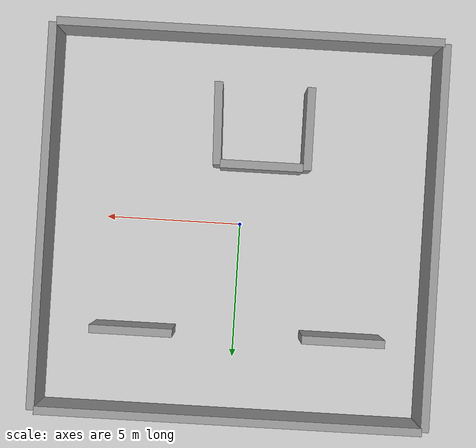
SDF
<sdf version="1.6">
 <world name="default">
  <light name="sun" type="directional">
   <pose>0 0 10 0 -0 0</pose>
   <diffuse>0.8 0.8 0.8 1</diffuse>
   <specular>0.2 0.2 0.2 1</specular>
   <attenuation>
    <range>1000</range>
    <constant>0.9</constant>
    <linear>0.01</linear>
    <quadratic>0.001</quadratic>
   </attenuation>
   <direction>-0.3 0.1 -0.9</direction>
  </light>
  <model name="ground_plane">
   <static>1</static>
   <link name="link">
    <collision name="collision">
     <geometry><plane><normal>0 0 1</normal><size>100 100</size></plane></geometry>
     <surface><friction><ode><mu>100</mu><mu2>50</mu2></ode></friction></surface>
    </collision>
    <visual name="visual">
     <cast_shadows>0</cast_shadows>
     <geometry><plane><normal>0 0 1</normal><size>100 100</size></plane></geometry>
     <material>
      <script><uri>file://media/materials/scripts/gazebo.material</uri><name>Gazebo/Grey</name></script>
     </material>
    </visual>
   </link>
  </model>
  <gravity>0 0 -9.8</gravity>
  <magnetic_field>6e-06 2.3e-05 -4.2e-05</magnetic_field>
  <atmosphere type="adiabatic"/>
  <physics name="default_physics" default="0" type="ode">
   <max_step_size>0.001</max_step_size>
   <real_time_factor>1</real_time_factor>
   <real_time_update_rate>1000</real_time_update_rate>
  </physics>
  <scene><ambient>0.4 0.4 0.4 1</ambient><background>0.7 0.7 0.7 1</background><shadows>1</shadows></scene>
  <spherical_coordinates>
   <surface_model>EARTH_WGS84</surface_model>
   <latitude_deg>0</latitude_deg>
   <longitude_deg>0</longitude_deg>
   <elevation>0</elevation>
   <heading_deg>0</heading_deg>
  </spherical_coordinates>
  <model name="grey_wall">
   <static>1</static>
   <link name="link">
    <pose>0 0 1.4 0 -0 0</pose>
    <collision name="collision"><geometry><box><size>14 0.3 2.8</size></box></geometry></collision>
    <visual name="visual">
     <cast_shadows>0</cast_shadows>
     <geometry><box><size>14 0.3 2.8</size></box></geometry>
     <material>
      <script>
       <uri>model://grey_wall/materials/scripts</uri>
       <uri>model://grey_wall/materials/textures</uri>
       <name>vrc/grey_wall</name>
      </script>
     </material>
    </visual>
   </link>
   <pose>0.00344 -6.93381 0 0 -0 0</pose>
  </model>
  <model name="grey_wall_0">
   <static>1</static>
   <link name="link">
    <pose>0 0 1.4 0 -0 0</pose>
    <collision name="collision"><geometry><box><size>14 0.3 2.8</size></box></geometry></collision>
    <visual name="visual">
     <cast_shadows>0</cast_shadows>
     <geometry><box><size>14 0.3 2.8</size></box></geometry>
     <material>
      <script>
       <uri>model://grey_wall/materials/scripts</uri>
       <uri>model://grey_wall/materials/textures</uri>
       <name>vrc/grey_wall</name>
      </script>
     </material>
    </visual>
   </link>
   <pose>0.034864 7.11716 0 0 -0 0</pose>
  </model>
  <model name="grey_wall_1">
   <static>1</static>
   <link name="link">
    <pose>0 0 1.4 0 -0 0</pose>
    <collision name="collision"><geometry><box><size>14 0.3 2.8</size></box></geometry></collision>
    <visual name="visual">
     <cast_shadows>0</cast_shadows>
     <geometry><box><size>14 0.3 2.8</size></box></geometry>
     <material>
      <script>
       <uri>model://grey_wall/materials/scripts</uri>
       <uri>model://grey_wall/materials/textures</uri>
       <name>vrc/grey_wall</name>
      </script>
     </material>
    </visual>
   </link>
   <pose>7.14449 0.116212 0 0 -0 1.5688</pose>
  </model>
  <model name="grey_wall_2">
   <static>1</static>
   <link name="link">
    <pose>0 0 1.4 0 -0 0</pose>
    <collision name="collision"><geometry><box><size>14 0.3 2.8</size></box></geometry></collision>
    <visual name="visual">
     <cast_shadows>0</cast_shadows>
     <geometry><box><size>14 0.3 2.8</size></box></geometry>
     <material>
      <script>
       <uri>model://grey_wall/materials/scripts</uri>
       <uri>model://grey_wall/materials/textures</uri>
       <name>vrc/grey_wall</name>
      </script>
     </material>
    </visual>
   </link>
   <pose>-7.07464 0.110448 0 0 -0 1.56995</pose>
  </model>
  <model name="grey_wall_4">
   <static>1</static>
   <link name="link">
    <pose>0 0 1.4 0 -0 0</pose>
    <collision name="collision"><geometry><box><size>3 0.3 2.8</size></box></geometry></collision>
    <visual name="visual">
     <cast_shadows>0</cast_shadows>
     <geometry><box><size>3 0.3 2.8</size></box></geometry>
     <material>
      <script>
       <uri>model://grey_wall/materials/scripts</uri>
       <uri>model://grey_wall/materials/textures</uri>
       <name>vrc/grey_wall</name>
      </script>
     </material>
    </visual>
   </link>
   <pose>-2.30792 -3.55605 0 0 -0 1.57174</pose>
  </model>
  <model name="grey_wall_6">
   <static>1</static>
   <link name="link">
    <pose>0 0 1.4 0 -0 0</pose>
    <collision name="collision"><geometry><box><size>3 0.3 2.8</size></box></geometry></collision>
    <visual name="visual">
     <cast_shadows>0</cast_shadows>
     <geometry><box><size>3 0.3 2.8</size></box></geometry>
     <material>
      <script>
       <uri>model://grey_wall/materials/scripts</uri>
       <uri>model://grey_wall/materials/textures</uri>
       <name>vrc/grey_wall</name>
      </script>
     </material>
    </visual>
   </link>
   <pose>-0.661302 -2.1413 0 0 -0 0</pose>
  </model>
  <model name="grey_wall_8">
   <static>1</static>
   <link name="link">
    <pose>0 0 1.4 0 -0 0</pose>
    <collision name="collision"><geometry><box><size>3 0.3 2.8</size></box></geometry></collision>
    <visual name="visual">
     <cast_shadows>0</cast_shadows>
     <geometry><box><size>3 0.3 2.8</size></box></geometry>
     <material>
      <script>
       <uri>model://grey_wall/materials/scripts</uri>
       <uri>model://grey_wall/materials/textures</uri>
       <name>vrc/grey_wall</name>
      </script>
     </material>
    </visual>
   </link>
   <pose>0.999468 -3.58089 0 0 -0 1.6025</pose>
  </model>
  <model name="grey_wall_3">
   <static>1</static>
   <link name="link">
    <pose>0 0 1.4 0 -0 0</pose>
    <collision name="collision"><geometry><box><size>3 0.3 2.8</size></box></geometry></collision>
    <visual name="visual">
     <cast_shadows>0</cast_shadows>
     <geometry><box><size>3 0.3 2.8</size></box></geometry>
     <material>
      <script>
       <uri>model://grey_wall/materials/scripts</uri>
       <uri>model://grey_wall/materials/textures</uri>
       <name>vrc/grey_wall</name>
      </script>
     </material>
    </visual>
   </link>
   <pose>-3.95998 4.03142 0 0 -0 0</pose>
  </model>
  <model name="grey_wall_5">
   <static>1</static>
   <link name="link">
    <pose>0 0 1.4 0 -0 0</pose>
    <collision name="collision"><geometry><box><size>3 0.3 2.8</size></box></geometry></collision>
    <visual name="visual">
     <cast_shadows>0</cast_shadows>
     <geometry><box><size>3 0.3 2.8</size></box></geometry>
     <material>
      <script>
       <uri>model://grey_wall/materials/scripts</uri>
       <uri>model://grey_wall/materials/textures</uri>
       <name>vrc/grey_wall</name>
      </script>
     </material>
    </visual>
   </link>
   <pose>3.71102 4.06768 0 0 -0 0</pose>
  </model>
 </world>
</sdf>
